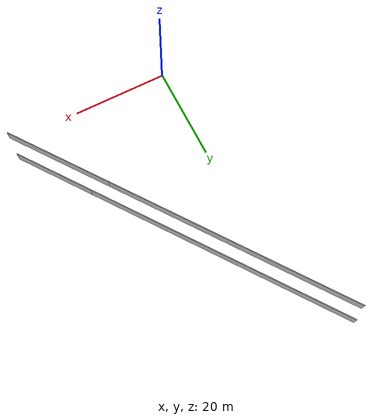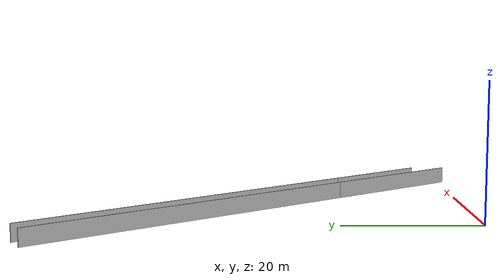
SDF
<?xml version="1.0" ?>
<sdf version="1.6">
  <model name="sps_4631">
    <pose frame="">0 0 0 0 -0 0</pose>
    <static>1</static>
    <self_collide>0</self_collide>
    <allow_auto_disable>0</allow_auto_disable>
    <link name="Wall84">
      <kinematic>0</kinematic>
      <gravity>1</gravity>
      <self_collide>0</self_collide>
      <collision name="collision">
        <geometry>
          <box>
            <size>16.9929 0.15 2.5</size>
          </box>
        </geometry>
        <pose frame="">0 0 0 0 -0 0</pose>
      </collision>
      <visual name="visual">
        <geometry>
          <box>
            <size>16.9929 0.15 2.5</size>
          </box>
        </geometry>
        <pose frame="">0 0 0 0 -0 0</pose>
        <cast_shadows>1</cast_shadows>
        <transparency>0.0</transparency>
      </visual>
      <pose frame="">29.4633 11.0281 1.25 0 -0 2.20088</pose>
    </link>
    <link name="Wall85">
      <kinematic>0</kinematic>
      <gravity>1</gravity>
      <self_collide>0</self_collide>
      <collision name="collision">
        <geometry>
          <box>
            <size>55.8873 0.15 2.5</size>
          </box>
        </geometry>
        <pose frame="">0 0 0 0 -0 0</pose>
      </collision>
      <visual name="visual">
        <geometry>
          <box>
            <size>55.8873 0.15 2.5</size>
          </box>
        </geometry>
        <pose frame="">0 0 0 0 -0 0</pose>
        <cast_shadows>1</cast_shadows>
        <transparency>0.0</transparency>
      </visual>
      <pose frame="">7.99237 40.471 1.25 0 -0 2.20088</pose>
    </link>
    <link name="Wall159">
      <kinematic>0</kinematic>
      <gravity>1</gravity>
      <self_collide>0</self_collide>
      <collision name="collision">
        <geometry>
          <box>
            <size>53.9646 0.15 2.5</size>
          </box>
        </geometry>
        <pose frame="">0 0 0 0 -0 0</pose>
      </collision>
      <visual name="visual">
        <geometry>
          <box>
            <size>53.9646 0.15 2.5</size>
          </box>
        </geometry>
        <pose frame="">0 0 0 0 -0 0</pose>
        <cast_shadows>1</cast_shadows>
        <transparency>0.0</transparency>
      </visual>
      <pose frame="">4.72197 39.6942 1.25 0 0 -0.940712</pose>
    </link>
    <link name="Wall160">
      <kinematic>0</kinematic>
      <gravity>1</gravity>
      <self_collide>0</self_collide>
      <collision name="collision">
        <geometry>
          <box>
            <size>23.5045 0.15 2.5</size>
          </box>
        </geometry>
        <pose frame="">0 0 0 0 -0 0</pose>
      </collision>
      <visual name="visual">
        <geometry>
          <box>
            <size>23.5045 0.15 2.5</size>
          </box>
        </geometry>
        <pose frame="">0 0 0 0 -0 0</pose>
        <cast_shadows>1</cast_shadows>
        <transparency>0.0</transparency>
      </visual>
      <pose frame="">27.5449 8.39753 1.25 0 0 -0.940712</pose>
    </link>
  </model>
</sdf>
